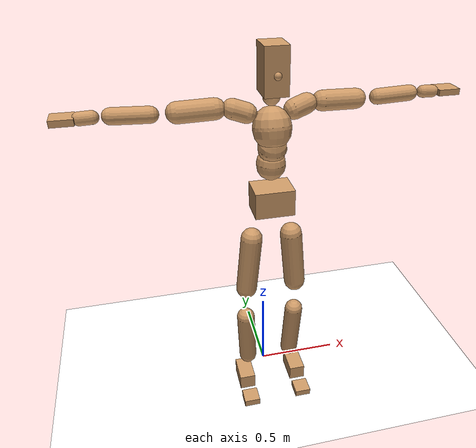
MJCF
<mujoco model="humanoid">
  <option integrator="implicitfast" />

  <visual>
    <global offwidth="1280" offheight="960" />
    <headlight active="1" ambient="0.34 0.34 0.34" diffuse="0.5 0.5 0.5" />
  </visual>

  <default>
    <joint damping="2" stiffness="2" armature="0.01" limited="true" solimplimit="0 .99 .01" />
    <geom condim="1" friction="0.7 0.005 0.0001" solimp=".99 .99 .003" solref="0.015 1" margin="0.001" rgba="0.8 0.6 .4 1" />
    <default class="smplcontact">
      <geom condim="3" friction="1. 0.005 0.0001" solref="0.015 1" solimp="0.98 0.98 0.001" priority="1" />
    </default>
    <default class="stiff_medium">
      <joint stiffness="10" />
    </default>
    <default class="stiff_medium_higher">
      <joint stiffness="50" />
    </default>
    <default class="stiff_high">
      <joint stiffness="100" />
    </default>
  </default>

  <asset>
    <texture type="skybox" builtin="gradient" rgb1="0.99 0.99 0.99" rgb2="0.608 0.828 0.892" width="100" />
    <texture builtin="flat" height="1278" mark="cross" markrgb="1 1 1" name="texgeom" random="0.01" rgb1="0.8 0.6 0.4" rgb2="0.8 0.6 0.4" type="cube" width="127" />
    <texture name="texplane" type="2d" builtin="checker" markrgb="1 1 1" rgb1="0.756 0.772 0.76" rgb2="0.6 0.6 0.6" width="100" height="100" />
    <material name="MatPlane" reflectance="0.5" texture="texplane" texrepeat="1 1" texuniform="true" />
    <material name="geom" texture="texgeom" texuniform="true" />
  </asset>

  <worldbody>
    <light name="tracking_light" pos="0 0 7" dir="0 0 -1" directional="true" cutoff="100" exponent="1" diffuse="1 1 1" specular="0.1 0.1 0.1" mode="trackcom" />
    <camera name="back" pos="0 3 2.4" xyaxes="-1 0 0 0 -1 2" mode="trackcom" />
    <camera name="side" pos="-3 0 2.4" xyaxes="0 -1 0 1 0 2" mode="trackcom" />
    <camera name="front_side" pos="-2.8 -2.8 0.8" xyaxes="0.5 -0.5 0 0.1 0.1 1" mode="trackcom" />
    <geom condim="3" name="floor" pos="0 0 0" rgba="1 1 1 1" size="100 100 .2" type="plane" material="MatPlane" />
    <body name="Pelvis" pos="-0.0018 -0.2233 1.39425" euler="90 0 0">
      <site name="Pelvis" size="0.01" />
      <freejoint name="Pelvis" />
      <geom type="box" pos="-0.0000 -0.0121 -0.0055" size="0.1069 0.0722 0.083" quat="1.0000 0.0000 0.0000 0.0000" density="3165.830099" name="Pelvis" />
      <body name="L_Hip" pos="0.10425 -0.1371 -0.0102">
        <joint name="L_Hip_x" type="hinge" pos="0 0 0" axis="1 0 0" stiffness="20.0107315625" range="-160.0 22.92" class="stiff_medium" damping="35.828496933058375" armature="0.02851095036953482"/>
        <joint name="L_Hip_y" type="hinge" pos="0 0 0" axis="0 1 0" stiffness="19.873601979166665" range="-70.0 70.0" class="stiff_medium" damping="19.520479471656408" armature="0.019173631393182268"/>
        <joint name="L_Hip_z" type="hinge" pos="0 0 0" axis="0 0 1" stiffness="19.885785624999997" range="-28.65 90.0" class="stiff_medium" damping="23.81659305603513" armature="0.028524400066129187"/>
        <geom type="capsule" density="2040.816327" fromto="0.01035 -0.1125 -0.00135 0.0411 -0.4503 -0.0054" size="0.0615" name="L_Hip" />
        <body name="L_Knee" pos="0.05145 -0.5628 -0.00675">
          <joint name="L_Knee_x" type="hinge" pos="0 0 0" axis="1 0 0" range="-5.16 171.89" damping="17.991065495172013" armature="0.026396428561925693" stiffness="3.8319392916666666"/>
          <joint name="L_Knee_y" type="hinge" pos="0 0 0" axis="0 1 0" range="-4.58 6.88" damping="14.94353643497154" armature="0.017722990590982566" stiffness="3.937492942375887"/>
          <joint name="L_Knee_z" type="hinge" pos="0 0 0" axis="0 0 1" range="-6.88 4.58" damping="17.912416654651853" armature="0.026455159530536423" stiffness="3.7900767291666666"/>
          <geom type="capsule" density="1234.567901" fromto="-0.00405 -0.1194 -0.01305 -0.01635 -0.4776 -0.0525" size="0.0541" name="L_Knee" />
          <body name="L_Ankle" pos="-0.0204 -0.597 -0.06555">
            <joint name="L_Ankle_x" type="hinge" pos="0 0 0" axis="1 0 0" range="-45.84 45.84" class="stiff_medium" damping="9.919510798854787" armature="0.018221610090480882" stiffness="15.0"/>
            <joint name="L_Ankle_y" type="hinge" pos="0 0 0" axis="0 1 0" range="-74.48 22.92" class="stiff_medium" damping="4.917952818000753" armature="0.017915748088949295" stiffness="15.0"/>
            <joint name="L_Ankle_z" type="hinge" pos="0 0 0" axis="0 0 1" range="-4.58 4.58" class="stiff_medium" damping="9.269968981325366" armature="0.015913393502728607" stiffness="15.0"/>
            <geom type="box" pos="0.03495 -0.03585 0.0363" size="0.0483 0.0464 0.085" quat="1.0000 0.0000 0.0000 0.0000" density="449.071558" name="L_Ankle" class="smplcontact" />
            <body name="L_Toe" pos="0.0396 -0.0837 0.17895">
              <joint name="L_Toe_x" type="hinge" pos="0 0 0" axis="1 0 0" range="-91.67 22.92" armature="0.014752348892846283" damping="2.9751318182070134" stiffness="3.0"/>
              <joint name="L_Toe_y" type="hinge" pos="0 0 0" axis="0 1 0" range="-4.58 4.58" armature="0.013348413454862205" damping="2.8300261611718933" stiffness="3.0"/>
              <joint name="L_Toe_z" type="hinge" pos="0 0 0" axis="0 0 1" range="-4.58 4.58" armature="0.010509731565731935" damping="2.5111429547994994" stiffness="3.0"/>
              <geom type="box" pos="-0.0045 0.00825 0.0372" size="0.0478 0.02 0.0496" quat="1.0000 0.0000 0.0000 0.0000" density="423.206892" name="L_Toe" class="smplcontact" />
            </body>
          </body>
        </body>
      </body>
      <body name="R_Hip" pos="-0.10155 -0.13575 -0.00645">
        <joint name="R_Hip_x" type="hinge" pos="0 0 0" axis="1 0 0" stiffness="20.0107315625" range="-160.0 22.92" class="stiff_medium" damping="35.828496933058375" armature="0.02851095036953482"/>
        <joint name="R_Hip_y" type="hinge" pos="0 0 0" axis="0 1 0" stiffness="19.873601979166665" range="-70.0 70.0" class="stiff_medium" damping="19.520479471656408" armature="0.019173631393182268"/>
        <joint name="R_Hip_z" type="hinge" pos="0 0 0" axis="0 0 1" stiffness="19.885785624999997" range="-90.0 28.65" class="stiff_medium" damping="23.81659305603513" armature="0.028524400066129187"/>
        <geom type="capsule" density="2040.816327" fromto="-0.01155 -0.11475 -0.0027 -0.0459 -0.45915 -0.01065" size="0.0606" name="R_Hip" />
        <body name="R_Knee" pos="-0.05745 -0.5739 -0.01335">
          <joint name="R_Knee_x" type="hinge" pos="0 0 0" axis="1 0 0" range="-5.16 171.89" damping="17.991065495172013" armature="0.026396428561925693" stiffness="3.8319392916666666"/>
          <joint name="R_Knee_y" type="hinge" pos="0 0 0" axis="0 1 0" range="-6.88 4.58" damping="14.94353643497154" armature="0.017722990590982566" stiffness="3.937492942375887"/>
          <joint name="R_Knee_z" type="hinge" pos="0 0 0" axis="0 0 1" range="-4.58 6.88" damping="17.912416654651853" armature="0.026455159530536423" stiffness="3.7900767291666666"/>
          <geom type="capsule" density="1234.567901" fromto="0.0048 -0.11955 -0.01275 0.0189 -0.47805 -0.0507" size="0.0541" name="R_Knee" />
          <body name="R_Ankle" pos="0.0237 -0.5976 -0.06345">
            <joint name="R_Ankle_x" type="hinge" pos="0 0 0" axis="1 0 0" range="-45.84 45.84" class="stiff_medium" damping="9.919510798854787" armature="0.018221610090480882" stiffness="15.0"/>
            <joint name="R_Ankle_y" type="hinge" pos="0 0 0" axis="0 1 0" range="-22.92 74.48" class="stiff_medium" damping="4.917952818000753" armature="0.017915748088949295" stiffness="15.0"/>
            <joint name="R_Ankle_z" type="hinge" pos="0 0 0" axis="0 0 1" range="-4.58 4.58" class="stiff_medium" damping="9.269968981325366" armature="0.015913393502728607" stiffness="15.0"/>
            <geom type="box" pos="-0.0318 -0.0261 0.0384" size="0.0483 0.0478 0.0865" quat="1.0000 0.0000 0.0000 0.0000" density="434.700981" name="R_Ankle" class="smplcontact" />
            <body name="R_Toe" pos="-0.0381 -0.07215 0.18495">
              <joint name="R_Toe_x" type="hinge" pos="0 0 0" axis="1 0 0" range="-91.67 22.92" armature="0.014752348892846283" damping="2.9751318182070134" stiffness="3.0"/>
              <joint name="R_Toe_y" type="hinge" pos="0 0 0" axis="0 1 0" range="-4.58 4.58" armature="0.013348413454862205" damping="2.8300261611718933" stiffness="3.0"/>
              <joint name="R_Toe_z" type="hinge" pos="0 0 0" axis="0 0 1" range="-4.58 4.58" armature="0.010509731565731935" damping="2.5111429547994994" stiffness="3.0"/>
              <geom type="box" pos="0.0063 0.00675 0.03405" size="0.0479 0.0216 0.0493" quat="1.0000 0.0000 0.0000 0.0000" density="407.384095" name="R_Toe" class="smplcontact" />
            </body>
          </body>
        </body>
      </body>
      <body name="Torso" pos="-0.0025 0.109 -0.0267">
        <joint name="Torso_x" type="hinge" pos="0 0 0" axis="1 0 0" range="-25.78 57.3" class="stiff_medium" damping="16.202371237460632" armature="0.011000822944888126" stiffness="10.605947291666666"/>
        <joint name="Torso_y" type="hinge" pos="0 0 0" axis="0 1 0" range="-57.3 57.3" class="stiff_high" damping="25.841953454033693" armature="0.015782642166796142" stiffness="105.78180625"/>
        <joint name="Torso_z" type="hinge" pos="0 0 0" axis="0 0 1" range="-34.38 34.38" class="stiff_high" damping="23.000097145500686" armature="0.012628565201764905" stiffness="104.72378695652176"/>
        <geom type="capsule" density="2040.816327" fromto="0.0025 0.0608 0.0005 0.003 0.0743 0.0006" size="0.0769" name="Torso" />
        <body name="Spine" pos="0.0055 0.1352 0.0011">
          <joint name="Spine_x" type="hinge" pos="0 0 0" axis="1 0 0" stiffness="10.765541249999998" range="-25.78 57.3" class="stiff_medium" damping="16.501854879259657" armature="0.011242092117287062"/>
          <joint name="Spine_y" type="hinge" pos="0 0 0" axis="0 1 0" stiffness="10.959226304347826" range="-57.3 57.3" class="stiff_high" damping="10.534626623769775" armature="0.015822621024438044"/>
          <joint name="Spine_z" type="hinge" pos="0 0 0" axis="0 0 1" stiffness="21.81502416666667" range="-34.38 34.38" class="stiff_high" damping="14.709756467515717" armature="0.013775988465595863"/>
          <geom type="capsule" density="2040.816327" fromto="0.0007 0.0238 0.0114 0.0008 0.0291 0.014" size="0.0755" name="Spine" />
          <body name="Chest" pos="0.0015 0.0529 0.0254">
            <joint name="Chest_x" type="hinge" pos="0 0 0" axis="1 0 0" stiffness="11.154349574468085" range="-25.78 57.3" class="stiff_medium" damping="16.908223620319244" armature="0.011391192649850416"/>
            <joint name="Chest_y" type="hinge" pos="0 0 0" axis="0 1 0" stiffness="12.283644444444446" range="-57.3 57.3" class="stiff_high" damping="11.155260912268542" armature="0.015828955346832537"/>
            <joint name="Chest_z" type="hinge" pos="0 0 0" axis="0 0 1" stiffness="22.001179574468086" range="-34.38 34.38" class="stiff_high" damping="15.041855374169172" armature="0.014283161773945485"/>
            <geom type="capsule" density="2040.816327" fromto="-0.0009 0.0682 -0.0173 -0.001 0.0833 -0.0212" size="0.1002" name="Chest" />
            <body name="Neck" pos="-0.0028 0.2139 -0.0429">
              <joint name="Neck_x" type="hinge" pos="0 0 0" axis="1 0 0" range="-28.65 57.3" class="stiff_medium_higher" damping="10.000000000000014" armature="0.01000000000000003" stiffness="50.0"/>
              <joint name="Neck_y" type="hinge" pos="0 0 0" axis="0 1 0" range="-40.11 40.11" class="stiff_medium_higher" damping="10.0" armature="0.010000000000000002" stiffness="50.0"/>
              <joint name="Neck_z" type="hinge" pos="0 0 0" axis="0 0 1" range="-40.11 40.11" class="stiff_medium_higher" damping="9.999999999999995" armature="0.00999999999999999" stiffness="50.0"/>
              <geom type="capsule" density="1000" fromto="0.001 0.013 0.0103 0.0041 0.052 0.0411" size="0.0436" name="Neck" />
              <body name="Head" pos="0.0052 0.065 0.0513">
                <joint name="Head_x" type="hinge" pos="0 0 0" axis="1 0 0" range="-28.65 57.3" class="stiff_medium_higher" damping="2.0000000000000036" armature="0.010000000000000035" stiffness="50.0"/>
                <joint name="Head_y" type="hinge" pos="0 0 0" axis="0 1 0" range="-40.11 40.11" class="stiff_medium_higher" damping="2.0" armature="0.01" stiffness="50.0"/>
                <joint name="Head_z" type="hinge" pos="0 0 0" axis="0 0 1" range="-40.11 40.11" class="stiff_medium_higher" damping="1.9999999999999958" armature="0.009999999999999959" stiffness="50.0"/>
                <geom type="box" pos="-0.0042 0.0876 -0.0116" size="0.0606 0.1154 0.076" quat="1.0000 0.0000 0.0000 0.0000" density="1018.069894" name="Head" />
                <geom type="capsule" name="nose" size="0.02 0.01" pos="0 0.07 0.05" quat="1 0 0 0" mass="0" contype="0" conaffinity="0" />
              </body>
            </body>
            <body name="L_Thorax" pos="0.09456 0.14604 -0.04092">
              <joint name="L_Thorax_x" type="hinge" pos="0 0 0" axis="1 0 0" range="-10.89 4.58" class="stiff_medium_higher" damping="27.343369228351428" armature="0.013883161405287519" stiffness="67.31714583333333"/>
              <joint name="L_Thorax_y" type="hinge" pos="0 0 0" axis="0 1 0" range="-28.65 17.19" class="stiff_medium_higher" damping="29.39592225655955" armature="0.015973211475722778" stiffness="67.62261354166665"/>
              <joint name="L_Thorax_z" type="hinge" pos="0 0 0" axis="0 0 1" range="-31.51 40.11" class="stiff_medium_higher" damping="29.396771350203267" armature="0.015975115138279126" stiffness="67.61846145833333"/>
              <geom type="capsule" density="1000" fromto="0.02184 0.00732 -0.00216 0.08736 0.02928 -0.00852" size="0.0521" name="L_Thorax" />
              <body name="L_Shoulder" pos="0.1092 0.0366 -0.01068">
                <joint name="L_Shoulder_x" type="hinge" pos="0 0 0" axis="1 0 0" range="-97.4 97.4" class="stiff_medium" damping="7.93343561060124" armature="0.013032307273705244" stiffness="13.415250625000002"/>
                <joint name="L_Shoulder_y" type="hinge" pos="0 0 0" axis="0 1 0" range="-108.86 80.21" class="stiff_medium" damping="8.787722636017786" armature="0.01588566930610925" stiffness="13.503447604166666"/>
                <joint name="L_Shoulder_z" type="hinge" pos="0 0 0" axis="0 0 1" range="-97.4 85.94" class="stiff_medium" damping="8.785969413785882" armature="0.01588800876452123" stiffness="13.4960725"/>
                <geom type="capsule" density="1000" fromto="0.06228 -0.00312 -0.0066 0.24924 -0.01224 -0.0264" size="0.0517" name="L_Shoulder" />
                <body name="L_Elbow" pos="0.31152 -0.01536 -0.033">
                  <joint name="L_Elbow_x" type="hinge" pos="0 0 0" axis="1 0 0" range="-17.19 4.58" damping="6.23278075982289" armature="0.011731525217588655" stiffness="2.6491052291666666"/>
                  <joint name="L_Elbow_y" type="hinge" pos="0 0 0" axis="0 1 0" range="-180.0 17.19" damping="7.15619362788729" armature="0.015461775606096705" stiffness="2.649688291666667"/>
                  <joint name="L_Elbow_z" type="hinge" pos="0 0 0" axis="0 0 1" range="-100.84 4.58" damping="7.157395963137906" armature="0.015474031127394237" stiffness="2.648479458333333"/>
                  <geom type="capsule" density="1000" fromto="0.05976 0.00216 -0.00024 0.23928 0.00864 -0.00108" size="0.0405" name="L_Elbow" />
                  <body name="L_Wrist" pos="0.29904 0.0108 -0.00144">
                    <joint name="L_Wrist_x" type="hinge" pos="0 0 0" axis="1 0 0" range="-180.0 22.92" armature="0.011470487256354394" damping="2.3885979353552136" stiffness="2.4869911666666664"/>
                    <joint name="L_Wrist_y" type="hinge" pos="0 0 0" axis="0 1 0" range="-17.19 17.19" armature="0.014137841032973964" damping="2.6587241765644944" stiffness="2.4999624166666665"/>
                    <joint name="L_Wrist_z" type="hinge" pos="0 0 0" axis="0 0 1" range="-22.92 22.92" armature="0.014283798741946494" damping="2.669542109257568" stiffness="2.4945937708333332"/>
                    <geom type="capsule" density="1000" fromto="0.02016 -0.00192 -0.0036 0.08064 -0.0078 -0.0144" size="0.0318" name="L_Wrist" class="smplcontact" />
                    <body name="L_Hand" pos="0.1008 -0.00984 -0.01788">
                      <joint name="L_Hand_x" type="hinge" pos="0 0 0" axis="1 0 0" range="-17.19 17.19" armature="0.010191691106290698" damping="2.2117892600832327" stiffness="2.4"/>
                      <joint name="L_Hand_y" type="hinge" pos="0 0 0" axis="0 1 0" range="-51.57 51.57" armature="0.012318239464289355" damping="2.4316157062453128" stiffness="2.4"/>
                      <joint name="L_Hand_z" type="hinge" pos="0 0 0" axis="0 0 1" range="-91.67 91.67" armature="0.012885099984317283" damping="2.4869354620641637" stiffness="2.4"/>
                      <geom type="box" pos="0.05916 0.0012 -0.00696" size="0.0585 0.0158 0.0538" quat="1.0000 0.0000 0.0000 0.0000" density="400.552564" name="L_Hand" class="smplcontact" />
                    </body>
                  </body>
                </body>
              </body>
            </body>
            <body name="R_Thorax" pos="-0.09816 0.14256 -0.04632">
              <joint name="R_Thorax_x" type="hinge" pos="0 0 0" axis="1 0 0" range="-10.89 4.58" class="stiff_medium_higher" damping="27.343369228351428" armature="0.013883161405287519" stiffness="67.31714583333333"/>
              <joint name="R_Thorax_y" type="hinge" pos="0 0 0" axis="0 1 0" range="-17.19 28.65" class="stiff_medium_higher" damping="29.39592225655955" armature="0.015973211475722778" stiffness="67.62261354166665"/>
              <joint name="R_Thorax_z" type="hinge" pos="0 0 0" axis="0 0 1" range="-40.11 31.51" class="stiff_medium_higher" damping="29.396771350203267" armature="0.015975115138279126" stiffness="67.61846145833333"/>
              <geom type="capsule" density="1000" fromto="-0.02304 0.0078 -0.00216 -0.09216 0.0312 -0.00876" size="0.0511" name="R_Thorax" />
              <body name="R_Shoulder" pos="-0.1152 0.03912 -0.01092">
                <joint name="R_Shoulder_x" type="hinge" pos="0 0 0" axis="1 0 0" range="-97.4 97.4" class="stiff_medium" damping="7.93343561060124" armature="0.013032307273705244" stiffness="13.415250625000002"/>
                <joint name="R_Shoulder_y" type="hinge" pos="0 0 0" axis="0 1 0" range="-80.21 108.86" class="stiff_medium" damping="8.787722636017786" armature="0.01588566930610925" stiffness="13.503447604166666"/>
                <joint name="R_Shoulder_z" type="hinge" pos="0 0 0" axis="0 0 1" range="-85.94 97.4" class="stiff_medium" damping="8.785969413785882" armature="0.01588800876452123" stiffness="13.4960725"/>
                <geom type="capsule" density="1000" fromto="-0.06084 -0.00324 -0.00516 -0.2436 -0.01284 -0.02052" size="0.0531" name="R_Shoulder" />
                <body name="R_Elbow" pos="-0.30444 -0.01596 -0.02568">
                  <joint name="R_Elbow_x" type="hinge" pos="0 0 0" axis="1 0 0" range="-17.19 4.58" damping="6.23278075982289" armature="0.011731525217588655" stiffness="2.6491052291666666"/>
                  <joint name="R_Elbow_y" type="hinge" pos="0 0 0" axis="0 1 0" range="-17.19 180.0" damping="7.15619362788729" armature="0.015461775606096705" stiffness="2.649688291666667"/>
                  <joint name="R_Elbow_z" type="hinge" pos="0 0 0" axis="0 0 1" range="-4.58 100.84" damping="7.157395963137906" armature="0.015474031127394237" stiffness="2.648479458333333"/>
                  <geom type="capsule" density="1000" fromto="-0.06132 0.00192 -0.00132 -0.24504 0.00744 -0.00528" size="0.0408" name="R_Elbow" />
                  <body name="R_Wrist" pos="-0.30636 0.00936 -0.00672">
                    <joint name="R_Wrist_x" type="hinge" pos="0 0 0" axis="1 0 0" range="-180.0 22.92" armature="0.011470487256354394" damping="2.3885979353552136" stiffness="2.4869911666666664"/>
                    <joint name="R_Wrist_y" type="hinge" pos="0 0 0" axis="0 1 0" range="-17.19 17.19" armature="0.014137841032973964" damping="2.6587241765644944" stiffness="2.4999624166666665"/>
                    <joint name="R_Wrist_z" type="hinge" pos="0 0 0" axis="0 0 1" range="-22.92 22.92" armature="0.014283798741946494" damping="2.669542109257568" stiffness="2.4945937708333332"/>
                    <geom type="capsule" density="1000" fromto="-0.02028 -0.00144 -0.00252 -0.08124 -0.00588 -0.00996" size="0.0326" name="R_Wrist" class="smplcontact" />
                    <body name="R_Hand" pos="-0.10152 -0.00732 -0.01236">
                      <joint name="R_Hand_x" type="hinge" pos="0 0 0" axis="1 0 0" range="-17.19 17.19" armature="0.010191691106290698" damping="2.2117892600832327" stiffness="2.4"/>
                      <joint name="R_Hand_y" type="hinge" pos="0 0 0" axis="0 1 0" range="-51.57 51.57" armature="0.012318239464289355" damping="2.4316157062453128" stiffness="2.4"/>
                      <joint name="R_Hand_z" type="hinge" pos="0 0 0" axis="0 0 1" range="-91.67 91.67" armature="0.012885099984317283" damping="2.4869354620641637" stiffness="2.4"/>
                      <geom type="box" pos="-0.05544 -0.00108 -0.00948" size="0.0569 0.0164 0.0546" quat="1.0000 0.0000 0.0000 0.0000" density="403.679611" name="R_Hand" class="smplcontact" />
                    </body>
                  </body>
                </body>
              </body>
            </body>
          </body>
        </body>
      </body>
    </body>
  </worldbody>
  <actuator>
    <general name="L_Hip_x" joint="L_Hip_x" biastype="affine" gainprm="574.9684782487438" biasprm="-430.88059806657446 -360.193168125 -4.777132924407783" ctrllimited="true" ctrlrange="-1 1" forcerange="-720.38633625 720.38633625" />
    <general name="L_Hip_y" joint="L_Hip_y" biastype="affine" gainprm="437.043333846823" biasprm="0.0 -357.72483562499997 -3.9040958943312813" ctrllimited="true" ctrlrange="-1 1" forcerange="-715.4496712499999 715.4496712499999" />
    <general name="L_Hip_z" joint="L_Hip_z" biastype="affine" gainprm="370.62129811511966" biasprm="191.63604415813393 -357.94414125 -4.763318611207026" ctrllimited="true" ctrlrange="-1 1" forcerange="-715.8882825 715.8882825" />
    <general name="L_Knee_x" joint="L_Knee_x" biastype="affine" gainprm="532.8493404049132" biasprm="501.79028819944176 -344.87453625 -4.497766373793003" ctrllimited="true" ctrlrange="-1 1" forcerange="-689.7490725 689.7490725" />
    <general name="L_Knee_y" joint="L_Knee_y" biastype="affine" gainprm="35.44004685230972" biasprm="7.112749368264604 -354.3743648138298 -3.735884108742885" ctrllimited="true" ctrlrange="-1 1" forcerange="-708.7487296276596 708.7487296276596" />
    <general name="L_Knee_z" joint="L_Knee_z" biastype="affine" gainprm="34.11320320347453" biasprm="-6.846454395112688 -341.10690562499997 -4.478104163662963" ctrllimited="true" ctrlrange="-1 1" forcerange="-682.2138112499999 682.2138112499999" />
    <general name="L_Ankle_x" joint="L_Ankle_x" biastype="affine" gainprm="108.0079554304171" biasprm="0.0 -135.0 -3.306503599618263" ctrllimited="true" ctrlrange="-1 1" forcerange="-270.0 270.0" />
    <general name="L_Ankle_y" joint="L_Ankle_y" biastype="affine" gainprm="114.74667167236721" biasprm="-60.742693957158664 -135.0 -3.278635212000502" ctrllimited="true" ctrlrange="-1 1" forcerange="-270.0 270.0" />
    <general name="L_Ankle_z" joint="L_Ankle_z" biastype="affine" gainprm="10.791370765080938" biasprm="0.0 -135.0 -3.089989660441789" ctrllimited="true" ctrlrange="-1 1" forcerange="-270.0 270.0" />
    <general name="L_Toe_x" joint="L_Toe_x" biastype="affine" gainprm="107.99853065245631" biasprm="-64.79534848028948 -108.0 -1.1900527272828054" ctrllimited="true" ctrlrange="-1 1" forcerange="-216.0 216.0" />
    <general name="L_Toe_y" joint="L_Toe_y" biastype="affine" gainprm="8.633096612064751" biasprm="0.0 -108.0 -1.1320104644687574" ctrllimited="true" ctrlrange="-1 1" forcerange="-216.0 216.0" />
    <general name="L_Toe_z" joint="L_Toe_z" biastype="affine" gainprm="8.633096612064751" biasprm="0.0 -108.0 -1.0044571819197998" ctrllimited="true" ctrlrange="-1 1" forcerange="-216.0 216.0" />
    <general name="R_Hip_x" joint="R_Hip_x" biastype="affine" gainprm="574.9684782487438" biasprm="-430.88059806657446 -360.193168125 -4.777132924407783" ctrllimited="true" ctrlrange="-1 1" forcerange="-720.38633625 720.38633625" />
    <general name="R_Hip_y" joint="R_Hip_y" biastype="affine" gainprm="437.043333846823" biasprm="0.0 -357.72483562499997 -3.9040958943312813" ctrllimited="true" ctrlrange="-1 1" forcerange="-715.4496712499999 715.4496712499999" />
    <general name="R_Hip_z" joint="R_Hip_z" biastype="affine" gainprm="370.62129811511966" biasprm="-191.63604415813393 -357.94414125 -4.763318611207026" ctrllimited="true" ctrlrange="-1 1" forcerange="-715.8882825 715.8882825" />
    <general name="R_Knee_x" joint="R_Knee_x" biastype="affine" gainprm="532.8493404049132" biasprm="501.79028819944176 -344.87453625 -4.497766373793003" ctrllimited="true" ctrlrange="-1 1" forcerange="-689.7490725 689.7490725" />
    <general name="R_Knee_y" joint="R_Knee_y" biastype="affine" gainprm="35.44004685230972" biasprm="-7.112749368264604 -354.3743648138298 -3.735884108742885" ctrllimited="true" ctrlrange="-1 1" forcerange="-708.7487296276596 708.7487296276596" />
    <general name="R_Knee_z" joint="R_Knee_z" biastype="affine" gainprm="34.11320320347453" biasprm="6.846454395112688 -341.10690562499997 -4.478104163662963" ctrllimited="true" ctrlrange="-1 1" forcerange="-682.2138112499999 682.2138112499999" />
    <general name="R_Ankle_x" joint="R_Ankle_x" biastype="affine" gainprm="108.0079554304171" biasprm="0.0 -135.0 -3.306503599618263" ctrllimited="true" ctrlrange="-1 1" forcerange="-270.0 270.0" />
    <general name="R_Ankle_y" joint="R_Ankle_y" biastype="affine" gainprm="114.74667167236721" biasprm="60.742693957158664 -135.0 -3.278635212000502" ctrllimited="true" ctrlrange="-1 1" forcerange="-270.0 270.0" />
    <general name="R_Ankle_z" joint="R_Ankle_z" biastype="affine" gainprm="10.791370765080938" biasprm="0.0 -135.0 -3.089989660441789" ctrllimited="true" ctrlrange="-1 1" forcerange="-270.0 270.0" />
    <general name="R_Toe_x" joint="R_Toe_x" biastype="affine" gainprm="107.99853065245631" biasprm="-64.79534848028948 -108.0 -1.1900527272828054" ctrllimited="true" ctrlrange="-1 1" forcerange="-216.0 216.0" />
    <general name="R_Toe_y" joint="R_Toe_y" biastype="affine" gainprm="8.633096612064751" biasprm="0.0 -108.0 -1.1320104644687574" ctrllimited="true" ctrlrange="-1 1" forcerange="-216.0 216.0" />
    <general name="R_Toe_z" joint="R_Toe_z" biastype="affine" gainprm="8.633096612064751" biasprm="0.0 -108.0 -1.0044571819197998" ctrllimited="true" ctrlrange="-1 1" forcerange="-216.0 216.0" />
    <general name="Torso_x" joint="Torso_x" biastype="affine" gainprm="184.5459700829397" biasprm="70.01551488943498 -254.542735 -4.320632329989502" ctrllimited="true" ctrlrange="-1 1" forcerange="-381.8141025 381.8141025" />
    <general name="Torso_y" joint="Torso_y" biastype="affine" gainprm="253.89503588442255" biasprm="0.0 -253.87633499999998 -5.1683906908067385" ctrllimited="true" ctrlrange="-1 1" forcerange="-380.8145025 380.8145025" />
    <general name="Torso_z" joint="Torso_z" biastype="affine" gainprm="150.81336152139332" biasprm="0.0 -251.33708869565223 -4.600019429100137" ctrllimited="true" ctrlrange="-1 1" forcerange="-377.0056330434783 377.0056330434783" />
    <general name="Spine_x" joint="Spine_x" biastype="affine" gainprm="187.32294238442782" biasprm="71.06907972986475 -258.37298999999996 -4.400494634469242" ctrllimited="true" ctrlrange="-1 1" forcerange="-387.559485 387.559485" />
    <general name="Spine_y" joint="Spine_y" biastype="affine" gainprm="263.040805829301" biasprm="0.0 -263.02143130434786 -5.267313311884887" ctrllimited="true" ctrlrange="-1 1" forcerange="-394.5321469565218 394.5321469565218" />
    <general name="Spine_z" joint="Spine_z" biastype="affine" gainprm="157.0797438604537" biasprm="0.0 -261.78029000000004 -4.903252155838572" ctrllimited="true" ctrlrange="-1 1" forcerange="-392.67043500000005 392.67043500000005" />
    <general name="Chest_x" joint="Chest_x" biastype="affine" gainprm="194.08829840987812" biasprm="73.63581085555316 -267.70438978723405 -4.508859632085132" ctrllimited="true" ctrlrange="-1 1" forcerange="-401.5565846808511 401.5565846808511" />
    <general name="Chest_y" joint="Chest_y" biastype="affine" gainprm="294.8291825952547" biasprm="0.0 -294.8074666666667 -5.577630456134271" ctrllimited="true" ctrlrange="-1 1" forcerange="-442.2112000000001 442.2112000000001" />
    <general name="Chest_z" joint="Chest_z" biastype="affine" gainprm="158.42016152638348" biasprm="0.0 -264.01415489361705 -5.013951791389724" ctrllimited="true" ctrlrange="-1 1" forcerange="-396.02123234042557 396.02123234042557" />
    <general name="Neck_x" joint="Neck_x" biastype="affine" gainprm="27.00198885760427" biasprm="9.000662952534757 -36.0 -0.8000000000000012" ctrllimited="true" ctrlrange="-1 1" forcerange="-72.0 72.0" />
    <general name="Neck_y" joint="Neck_y" biastype="affine" gainprm="25.20185626709732" biasprm="0.0 -36.0 -0.8" ctrllimited="true" ctrlrange="-1 1" forcerange="-72.0 72.0" />
    <general name="Neck_z" joint="Neck_z" biastype="affine" gainprm="25.20185626709732" biasprm="0.0 -36.0 -0.7999999999999996" ctrllimited="true" ctrlrange="-1 1" forcerange="-72.0 72.0" />
    <general name="Head_x" joint="Head_x" biastype="affine" gainprm="18.001325905069514" biasprm="6.000441968356505 -24.0 -0.8000000000000015" ctrllimited="true" ctrlrange="-1 1" forcerange="-48.0 48.0" />
    <general name="Head_y" joint="Head_y" biastype="affine" gainprm="16.801237511398213" biasprm="0.0 -24.0 -0.8" ctrllimited="true" ctrlrange="-1 1" forcerange="-48.0 48.0" />
    <general name="Head_z" joint="Head_z" biastype="affine" gainprm="16.801237511398213" biasprm="0.0 -24.0 -0.7999999999999984" ctrllimited="true" ctrlrange="-1 1" forcerange="-48.0 48.0" />
    <general name="L_Thorax_x" joint="L_Thorax_x" biastype="affine" gainprm="21.810951973603252" biasprm="-8.89638700410062 -161.56114999999997 -2.187469538268114" ctrllimited="true" ctrlrange="-1 1" forcerange="-323.12229999999994 323.12229999999994" />
    <general name="L_Thorax_y" joint="L_Thorax_y" biastype="affine" gainprm="64.92249092885912" biasprm="-16.23062273221478 -162.29427249999998 -2.3516737805247643" ctrllimited="true" ctrlrange="-1 1" forcerange="-324.58854499999995 324.58854499999995" />
    <general name="L_Thorax_z" joint="L_Thorax_z" biastype="affine" gainprm="101.42808250384455" biasprm="12.179300607833888 -162.2843075 -2.3517417080162613" ctrllimited="true" ctrlrange="-1 1" forcerange="-324.568615 324.568615" />
    <general name="L_Shoulder_x" joint="L_Shoulder_x" biastype="affine" gainprm="109.4652699640458" biasprm="0.0 -64.393203 -2.1155828294936643" ctrllimited="true" ctrlrange="-1 1" forcerange="-128.786406 128.786406" />
    <general name="L_Shoulder_y" joint="L_Shoulder_y" biastype="affine" gainprm="106.94387029062806" biasprm="-16.205330744308952 -64.81654850000001 -2.3433927029380763" ctrllimited="true" ctrlrange="-1 1" forcerange="-129.63309700000002 129.63309700000002" />
    <general name="L_Shoulder_z" joint="L_Shoulder_z" biastype="affine" gainprm="103.64616534807887" biasprm="-6.478591986958582 -64.781148 -2.3429251770095685" ctrllimited="true" ctrlrange="-1 1" forcerange="-129.562296 129.562296" />
    <general name="L_Elbow_x" joint="L_Elbow_x" biastype="affine" gainprm="18.117885539269537" biasprm="-10.494558412962284 -95.36778824999999 -0.9972449215716624" ctrllimited="true" ctrlrange="-1 1" forcerange="-190.73557649999998 190.73557649999998" />
    <general name="L_Elbow_y" joint="L_Elbow_y" biastype="affine" gainprm="164.14571363079358" biasprm="-135.52697213971047 -95.38877850000002 -1.1449909804619665" ctrllimited="true" ctrlrange="-1 1" forcerange="-190.77755700000003 190.77755700000003" />
    <general name="L_Elbow_z" joint="L_Elbow_z" biastype="affine" gainprm="87.71411653117477" biasprm="-80.09259018488792 -95.3452605 -1.145183354102065" ctrllimited="true" ctrlrange="-1 1" forcerange="-190.690521 190.690521" />
    <general name="L_Wrist_x" joint="L_Wrist_x" biastype="affine" gainprm="26.423948770507838" biasprm="-20.45473030194841 -14.921947 -0.9554391741420855" ctrllimited="true" ctrlrange="-1 1" forcerange="-29.843894 29.843894" />
    <general name="L_Wrist_y" joint="L_Wrist_y" biastype="affine" gainprm="4.500263821284186" biasprm="0.0 -14.9997745 -1.063489670625798" ctrllimited="true" ctrlrange="-1 1" forcerange="-29.999549 29.999549" />
    <general name="L_Wrist_z" joint="L_Wrist_z" biastype="affine" gainprm="5.987466062603618" biasprm="0.0 -14.967562625 -1.0678168437030273" ctrllimited="true" ctrlrange="-1 1" forcerange="-29.93512525 29.93512525" />
    <general name="L_Hand_x" joint="L_Hand_x" biastype="affine" gainprm="4.320318217216684" biasprm="0.0 -14.399999999999999 -0.8847157040332931" ctrllimited="true" ctrlrange="-1 1" forcerange="-28.799999999999997 28.799999999999997" />
    <general name="L_Hand_y" joint="L_Hand_y" biastype="affine" gainprm="12.96095465165005" biasprm="0.0 -14.399999999999999 -0.9726462824981251" ctrllimited="true" ctrlrange="-1 1" forcerange="-28.799999999999997 28.799999999999997" />
    <general name="L_Hand_z" joint="L_Hand_z" biastype="affine" gainprm="23.039183884366107" biasprm="0.0 -14.399999999999999 -0.9947741848256655" ctrllimited="true" ctrlrange="-1 1" forcerange="-28.799999999999997 28.799999999999997" />
    <general name="R_Thorax_x" joint="R_Thorax_x" biastype="affine" gainprm="21.810951973603252" biasprm="-8.89638700410062 -161.56114999999997 -2.187469538268114" ctrllimited="true" ctrlrange="-1 1" forcerange="-323.12229999999994 323.12229999999994" />
    <general name="R_Thorax_y" joint="R_Thorax_y" biastype="affine" gainprm="64.92249092885912" biasprm="16.23062273221477 -162.29427249999998 -2.3516737805247643" ctrllimited="true" ctrlrange="-1 1" forcerange="-324.58854499999995 324.58854499999995" />
    <general name="R_Thorax_z" joint="R_Thorax_z" biastype="affine" gainprm="101.42808250384455" biasprm="-12.179300607833888 -162.2843075 -2.3517417080162613" ctrllimited="true" ctrlrange="-1 1" forcerange="-324.568615 324.568615" />
    <general name="R_Shoulder_x" joint="R_Shoulder_x" biastype="affine" gainprm="109.4652699640458" biasprm="0.0 -64.393203 -2.1155828294936643" ctrllimited="true" ctrlrange="-1 1" forcerange="-128.786406 128.786406" />
    <general name="R_Shoulder_y" joint="R_Shoulder_y" biastype="affine" gainprm="106.94387029062806" biasprm="16.205330744308952 -64.81654850000001 -2.3433927029380763" ctrllimited="true" ctrlrange="-1 1" forcerange="-129.63309700000002 129.63309700000002" />
    <general name="R_Shoulder_z" joint="R_Shoulder_z" biastype="affine" gainprm="103.64616534807887" biasprm="6.478591986958568 -64.781148 -2.3429251770095685" ctrllimited="true" ctrlrange="-1 1" forcerange="-129.562296 129.562296" />
    <general name="R_Elbow_x" joint="R_Elbow_x" biastype="affine" gainprm="18.117885539269537" biasprm="-10.494558412962284 -95.36778824999999 -0.9972449215716624" ctrllimited="true" ctrlrange="-1 1" forcerange="-190.73557649999998 190.73557649999998" />
    <general name="R_Elbow_y" joint="R_Elbow_y" biastype="affine" gainprm="164.14571363079358" biasprm="135.52697213971047 -95.38877850000002 -1.1449909804619665" ctrllimited="true" ctrlrange="-1 1" forcerange="-190.77755700000003 190.77755700000003" />
    <general name="R_Elbow_z" joint="R_Elbow_z" biastype="affine" gainprm="87.71411653117477" biasprm="80.09259018488791 -95.3452605 -1.145183354102065" ctrllimited="true" ctrlrange="-1 1" forcerange="-190.690521 190.690521" />
    <general name="R_Wrist_x" joint="R_Wrist_x" biastype="affine" gainprm="26.423948770507838" biasprm="-20.45473030194841 -14.921947 -0.9554391741420855" ctrllimited="true" ctrlrange="-1 1" forcerange="-29.843894 29.843894" />
    <general name="R_Wrist_y" joint="R_Wrist_y" biastype="affine" gainprm="4.500263821284186" biasprm="0.0 -14.9997745 -1.063489670625798" ctrllimited="true" ctrlrange="-1 1" forcerange="-29.999549 29.999549" />
    <general name="R_Wrist_z" joint="R_Wrist_z" biastype="affine" gainprm="5.987466062603618" biasprm="0.0 -14.967562625 -1.0678168437030273" ctrllimited="true" ctrlrange="-1 1" forcerange="-29.93512525 29.93512525" />
    <general name="R_Hand_x" joint="R_Hand_x" biastype="affine" gainprm="4.320318217216684" biasprm="0.0 -14.399999999999999 -0.8847157040332931" ctrllimited="true" ctrlrange="-1 1" forcerange="-28.799999999999997 28.799999999999997" />
    <general name="R_Hand_y" joint="R_Hand_y" biastype="affine" gainprm="12.96095465165005" biasprm="0.0 -14.399999999999999 -0.9726462824981251" ctrllimited="true" ctrlrange="-1 1" forcerange="-28.799999999999997 28.799999999999997" />
    <general name="R_Hand_z" joint="R_Hand_z" biastype="affine" gainprm="23.039183884366107" biasprm="0.0 -14.399999999999999 -0.9947741848256655" ctrllimited="true" ctrlrange="-1 1" forcerange="-28.799999999999997 28.799999999999997" />
  </actuator>
  <contact>
    <exclude body1="Torso" body2="Chest" />
    <exclude body1="Head" body2="Chest" />
    <exclude body1="R_Knee" body2="R_Toe" />
    <exclude body1="R_Knee" body2="L_Ankle" />
    <exclude body1="R_Knee" body2="L_Toe" />
    <exclude body1="L_Knee" body2="L_Toe" />
    <exclude body1="L_Knee" body2="R_Ankle" />
    <exclude body1="L_Knee" body2="R_Toe" />
    <exclude body1="L_Shoulder" body2="Chest" />
    <exclude body1="R_Shoulder" body2="Chest" />
  </contact>
  <sensor>
    <framelinvel name="sensor_Pelvis_framelinvel" objtype="xbody" objname="Pelvis" />
    <framelinvel name="sensor_L_Hip_framelinvel" objtype="xbody" objname="L_Hip" />
    <framelinvel name="sensor_L_Knee_framelinvel" objtype="xbody" objname="L_Knee" />
    <framelinvel name="sensor_L_Ankle_framelinvel" objtype="xbody" objname="L_Ankle" />
    <framelinvel name="sensor_L_Toe_framelinvel" objtype="xbody" objname="L_Toe" />
    <framelinvel name="sensor_R_Hip_framelinvel" objtype="xbody" objname="R_Hip" />
    <framelinvel name="sensor_R_Knee_framelinvel" objtype="xbody" objname="R_Knee" />
    <framelinvel name="sensor_R_Ankle_framelinvel" objtype="xbody" objname="R_Ankle" />
    <framelinvel name="sensor_R_Toe_framelinvel" objtype="xbody" objname="R_Toe" />
    <framelinvel name="sensor_Torso_framelinvel" objtype="xbody" objname="Torso" />
    <framelinvel name="sensor_Spine_framelinvel" objtype="xbody" objname="Spine" />
    <framelinvel name="sensor_Chest_framelinvel" objtype="xbody" objname="Chest" />
    <framelinvel name="sensor_Neck_framelinvel" objtype="xbody" objname="Neck" />
    <framelinvel name="sensor_Head_framelinvel" objtype="xbody" objname="Head" />
    <framelinvel name="sensor_L_Thorax_framelinvel" objtype="xbody" objname="L_Thorax" />
    <framelinvel name="sensor_L_Shoulder_framelinvel" objtype="xbody" objname="L_Shoulder" />
    <framelinvel name="sensor_L_Elbow_framelinvel" objtype="xbody" objname="L_Elbow" />
    <framelinvel name="sensor_L_Wrist_framelinvel" objtype="xbody" objname="L_Wrist" />
    <framelinvel name="sensor_L_Hand_framelinvel" objtype="xbody" objname="L_Hand" />
    <framelinvel name="sensor_R_Thorax_framelinvel" objtype="xbody" objname="R_Thorax" />
    <framelinvel name="sensor_R_Shoulder_framelinvel" objtype="xbody" objname="R_Shoulder" />
    <framelinvel name="sensor_R_Elbow_framelinvel" objtype="xbody" objname="R_Elbow" />
    <framelinvel name="sensor_R_Wrist_framelinvel" objtype="xbody" objname="R_Wrist" />
    <framelinvel name="sensor_R_Hand_framelinvel" objtype="xbody" objname="R_Hand" />
    <frameangvel name="sensor_Pelvis_frameangvel" objtype="xbody" objname="Pelvis" />
    <frameangvel name="sensor_L_Hip_frameangvel" objtype="xbody" objname="L_Hip" />
    <frameangvel name="sensor_L_Knee_frameangvel" objtype="xbody" objname="L_Knee" />
    <frameangvel name="sensor_L_Ankle_frameangvel" objtype="xbody" objname="L_Ankle" />
    <frameangvel name="sensor_L_Toe_frameangvel" objtype="xbody" objname="L_Toe" />
    <frameangvel name="sensor_R_Hip_frameangvel" objtype="xbody" objname="R_Hip" />
    <frameangvel name="sensor_R_Knee_frameangvel" objtype="xbody" objname="R_Knee" />
    <frameangvel name="sensor_R_Ankle_frameangvel" objtype="xbody" objname="R_Ankle" />
    <frameangvel name="sensor_R_Toe_frameangvel" objtype="xbody" objname="R_Toe" />
    <frameangvel name="sensor_Torso_frameangvel" objtype="xbody" objname="Torso" />
    <frameangvel name="sensor_Spine_frameangvel" objtype="xbody" objname="Spine" />
    <frameangvel name="sensor_Chest_frameangvel" objtype="xbody" objname="Chest" />
    <frameangvel name="sensor_Neck_frameangvel" objtype="xbody" objname="Neck" />
    <frameangvel name="sensor_Head_frameangvel" objtype="xbody" objname="Head" />
    <frameangvel name="sensor_L_Thorax_frameangvel" objtype="xbody" objname="L_Thorax" />
    <frameangvel name="sensor_L_Shoulder_frameangvel" objtype="xbody" objname="L_Shoulder" />
    <frameangvel name="sensor_L_Elbow_frameangvel" objtype="xbody" objname="L_Elbow" />
    <frameangvel name="sensor_L_Wrist_frameangvel" objtype="xbody" objname="L_Wrist" />
    <frameangvel name="sensor_L_Hand_frameangvel" objtype="xbody" objname="L_Hand" />
    <frameangvel name="sensor_R_Thorax_frameangvel" objtype="xbody" objname="R_Thorax" />
    <frameangvel name="sensor_R_Shoulder_frameangvel" objtype="xbody" objname="R_Shoulder" />
    <frameangvel name="sensor_R_Elbow_frameangvel" objtype="xbody" objname="R_Elbow" />
    <frameangvel name="sensor_R_Wrist_frameangvel" objtype="xbody" objname="R_Wrist" />
    <frameangvel name="sensor_R_Hand_frameangvel" objtype="xbody" objname="R_Hand" />
    <subtreelinvel name="Chest_subtreelinvel" body="Chest" />
    <gyro name="Pelvis_gyro" site="Pelvis" />
  </sensor>
</mujoco>
